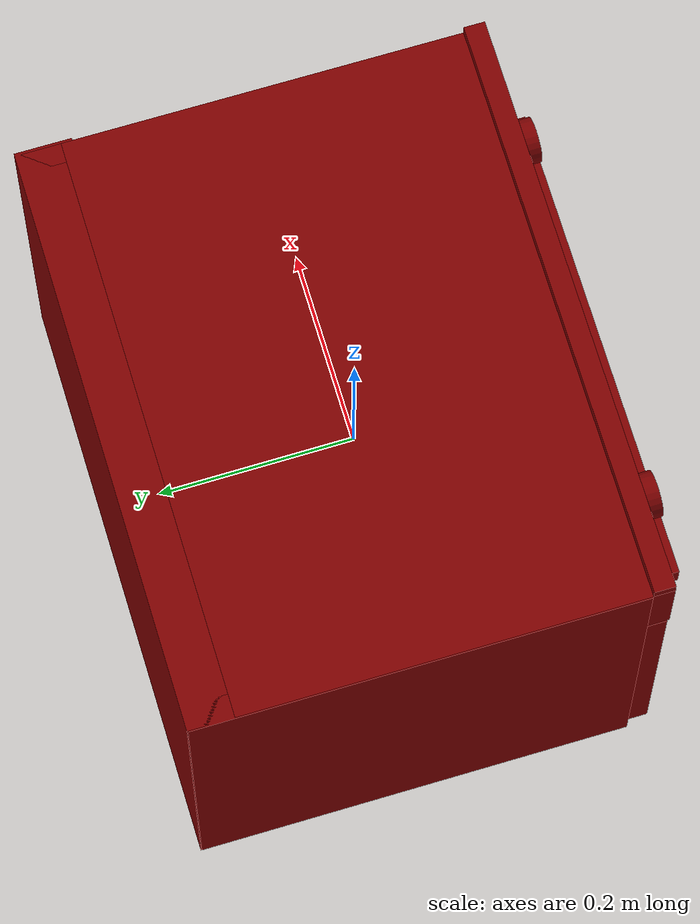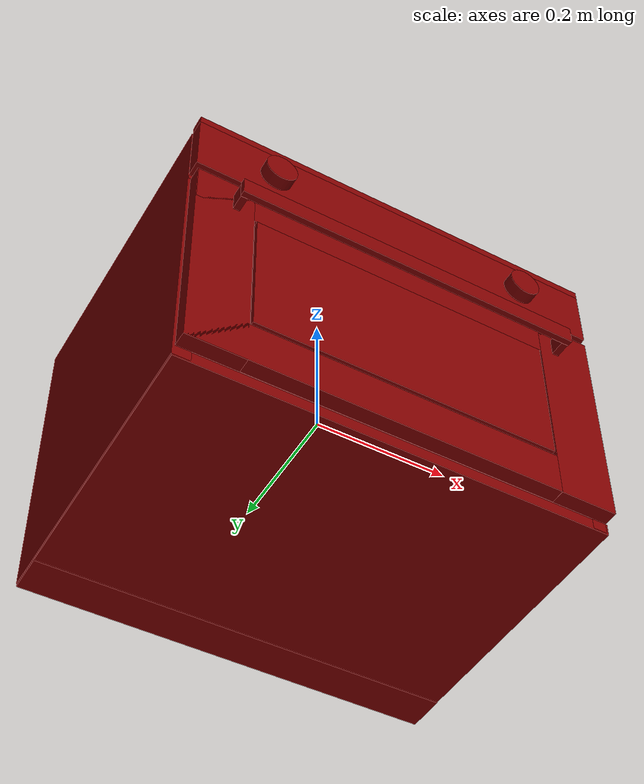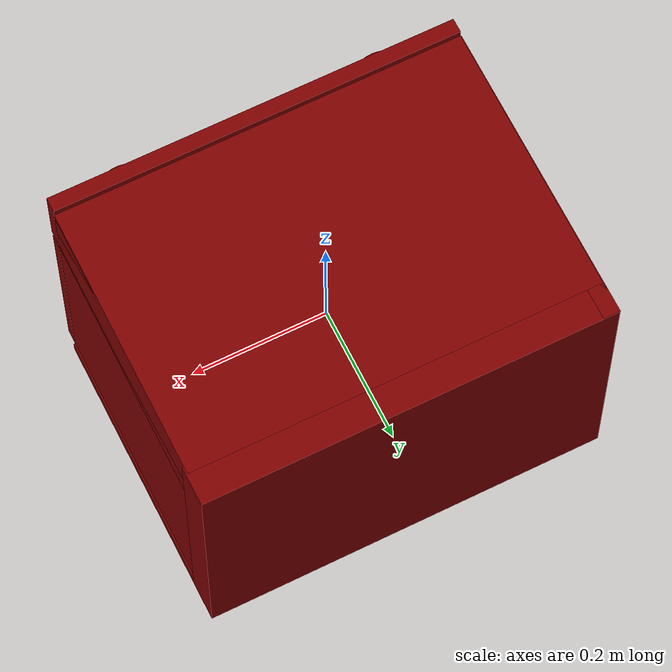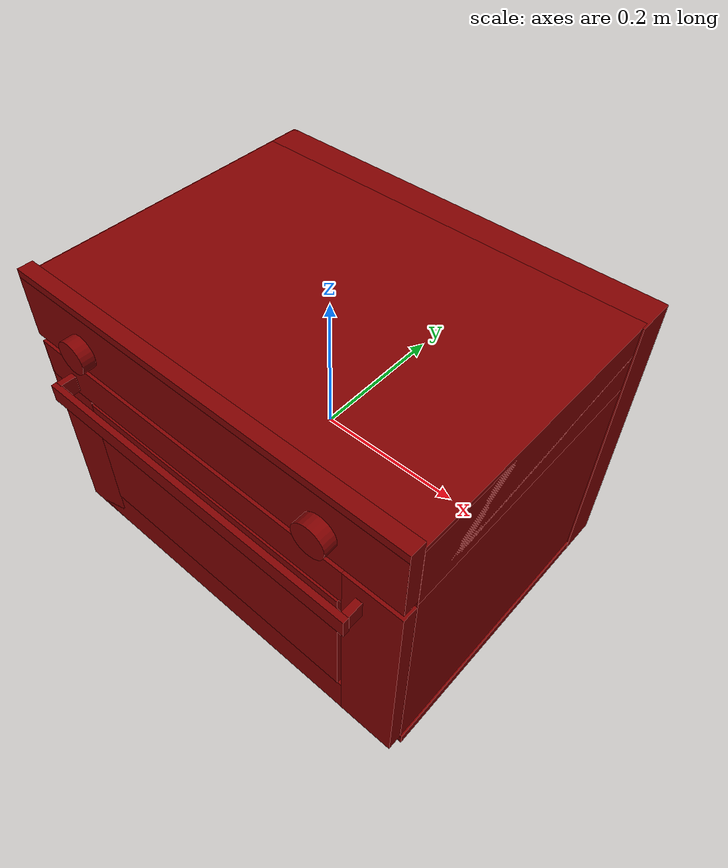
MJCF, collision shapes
<mujoco model="model">
  <compiler angle="radian"/>
  <asset>
    <mesh file="visuals/Body001.obj" name="Body001_vis"/>
    <mesh file="visuals/Container001.obj" name="Container001_vis"/>
    <mesh file="visuals/Door001.obj" name="Door001_vis"/>
    <mesh file="visuals/Door001_Clear.obj" name="Door001_Clear_vis"/>
    <mesh file="visuals/Konb001.obj" name="Konb001_vis"/>
    <mesh file="visuals/Konb002.obj" name="Konb002_vis"/>
    <texture file="visuals/T_BC001.png" name="Body001_material" type="2d"/>
    <material name="Body001_material" rgba="1 1 1 1.0" texture="Body001_material" shininess="0.4472135901451111" specular="1"/>
    <texture file="visuals/T_BC001.png" name="Container001_material" type="2d"/>
    <material name="Container001_material" rgba="1 1 1 1.0" texture="Container001_material" shininess="0.4472135901451111" specular="5"/>
    <texture file="visuals/T_BC001.png" name="Door001_material" type="2d"/>
    <material name="Door001_material" rgba="1 1 1 1.0" texture="Door001_material" shininess="0.4472135901451111" specular="1"/>
    <texture file="visuals/T_BC001.png" name="Door001_Clear_material" type="2d"/>
    <material name="Door001_Clear_material" rgba="1 1 1 0.7405593395233154" texture="Door001_Clear_material" shininess="0.4472135901451111" specular="0.3103448502657381"/>
    <texture file="visuals/T_BC001.png" name="Konb001_material" type="2d"/>
    <material name="Konb001_material" rgba="1 1 1 1.0" texture="Konb001_material" shininess="0.4472135901451111" specular="0.3103448502657381"/>
    <texture file="visuals/T_BC001.png" name="Konb002_material" type="2d"/>
    <material name="Konb002_material" rgba="1 1 1 1.0" texture="Konb002_material" shininess="0.4472135901451111" specular="0.3103448502657381"/>
  </asset>
  <default>
    <default class="visual">
      <geom conaffinity="0" contype="0" group="1" type="mesh"/>
    </default>
    <default class="collision">
      <geom group="0" rgba="0.5 0 0 0.5"/>
    </default>
    <default class="spawn">
      <geom group="0" rgba="1 1 1 0.5" contype="0" conaffinity="0"/>
      <site group="0" rgba="1 1 1 0.5"/>
    </default>
    <default class="region">
      <geom group="1" conaffinity="0" contype="0" rgba="0 1 0 0"/>
    </default>
  </default>
  <worldbody>
    <body>
      <body name="object">
        <geom mesh="Body001_vis" type="mesh" solimp="0.998 0.998 0.001" solref="0.001 1" density="100" friction="0.95 0.3 0.1" class="visual" material="Body001_material"/>
        <geom class="collision" type="box" pos="-0.288589 0.025504 -0.005253" size="0.012301268987357616 0.22443567216396332 0.21716304123401642" quat="1.0 0.0 0.0 0.0"/>
        <geom class="collision" type="box" pos="0.287287 0.025504 -0.005253" size="0.01007136981934309 0.22443567216396332 0.21716304123401642" quat="1.0 0.0 0.0 0.0"/>
        <geom class="collision" type="box" pos="0.000008 0.221960 -0.006882" size="0.29982373118400574 0.028858307749032974 0.218792125582695" quat="1.0 0.0 0.0 0.0"/>
        <geom class="collision" type="box" pos="-0.001163 -0.008207 0.166489" size="0.29865479469299316 0.2129410356283188 0.045421745628118515" quat="1.0 0.0 0.0 0.0"/>
        <geom class="collision" type="box" pos="0.000008 -0.002999 -0.216227" size="0.29982486367225647 0.1959325671195984 0.008477035909891129" quat="1.0 0.0 0.0 0.0"/>
        <geom class="collision" type="box" pos="-0.000955 -0.210335 0.172772" size="0.29865479469299316 0.010733655653893948 0.05090698227286339" quat="1.0 0.0 0.0 0.0"/>
        <geom class="collision" type="box" pos="-0.001163 0.002901 0.158916" size="0.29865479469299316 0.2018328309059143 0.045421745628118515" quat="1.0 0.0 0.0 0.0"/>
        <geom class="collision" type="box" pos="0.267063 0.000910 -0.002714" size="0.01082796510308981 0.171627014875412 0.002921855775639415" quat="1.0 0.0 0.0 0.0"/>
        <geom class="collision" type="box" pos="0.267063 0.000910 -0.021304" size="0.01082796510308981 0.171627014875412 0.002921855775639415" quat="1.0 0.0 0.0 0.0"/>
        <geom class="collision" type="box" pos="0.267063 0.000910 0.067570" size="0.01082796510308981 0.171627014875412 0.002921855775639415" quat="1.0 0.0 0.0 0.0"/>
        <geom class="collision" type="box" pos="0.267063 0.000910 0.048980" size="0.01082796510308981 0.171627014875412 0.002921855775639415" quat="1.0 0.0 0.0 0.0"/>
        <geom class="collision" type="box" pos="0.267063 0.000910 -0.072808" size="0.01082796510308981 0.171627014875412 0.002921855775639415" quat="1.0 0.0 0.0 0.0"/>
        <geom class="collision" type="box" pos="0.267063 0.000910 -0.091974" size="0.01082796510308981 0.171627014875412 0.002921855775639415" quat="1.0 0.0 0.0 0.0"/>
        <geom class="collision" type="box" pos="0.267063 0.000910 -0.143260" size="0.01082796510308981 0.171627014875412 0.002921855775639415" quat="1.0 0.0 0.0 0.0"/>
        <geom class="collision" type="box" pos="0.267063 0.000910 -0.162427" size="0.01082796510308981 0.171627014875412 0.002921855775639415" quat="1.0 0.0 0.0 0.0"/>
        <geom class="collision" type="box" pos="-0.267527 0.000910 -0.002714" size="0.01082796510308981 0.171627014875412 0.002921855775639415" quat="1.0 0.0 0.0 0.0"/>
        <geom class="collision" type="box" pos="-0.267527 0.000910 -0.021304" size="0.01082796510308981 0.171627014875412 0.002921855775639415" quat="1.0 0.0 0.0 0.0"/>
        <geom class="collision" type="box" pos="-0.267527 0.000910 0.067570" size="0.01082796510308981 0.171627014875412 0.002921855775639415" quat="1.0 0.0 0.0 0.0"/>
        <geom class="collision" type="box" pos="-0.267527 0.000910 0.048980" size="0.01082796510308981 0.171627014875412 0.002921855775639415" quat="1.0 0.0 0.0 0.0"/>
        <geom class="collision" type="box" pos="-0.267527 0.000910 -0.072808" size="0.01082796510308981 0.171627014875412 0.002921855775639415" quat="1.0 0.0 0.0 0.0"/>
        <geom class="collision" type="box" pos="-0.267527 0.000910 -0.091974" size="0.01082796510308981 0.171627014875412 0.002921855775639415" quat="1.0 0.0 0.0 0.0"/>
        <geom class="collision" type="box" pos="-0.267527 0.000910 -0.143260" size="0.01082796510308981 0.171627014875412 0.002921855775639415" quat="1.0 0.0 0.0 0.0"/>
        <geom class="collision" type="box" pos="-0.267527 0.000910 -0.162427" size="0.01082796510308981 0.171627014875412 0.002921855775639415" quat="1.0 0.0 0.0 0.0"/>
        <body name="Container001">
          <joint axis="0.0 -1.0 0.0" pos="0.000234 0.003716 -0.100328" limited="true" name="Container001_joint" range="0.0 0.25" type="slide" damping="1" frictionloss="1" armature=".01" stiffness="0.05"/>
          <geom mesh="Container001_vis" type="mesh" solimp="0.998 0.998 0.001" solref="0.001 1" density="100" friction="0.95 0.3 0.1" class="visual" material="Container001_material"/>
          <geom class="collision" type="box" pos="0.000234 0.003716 -0.100327" size="0.24693214893341064 0.17276442050933838 0.01748277060687542" quat="1.0 0.0 0.0 0.0"/>
        </body>
        <body name="Door001">
          <joint axis="1.0 0.0 0.0" pos="0.000008 -0.210710 -0.212575" limited="true" name="Door001_joint" range="0.0 1.15" type="hinge" damping="5" frictionloss="1" armature=".01" stiffness="0.05" springref="-0.1"/>
          <geom mesh="Door001_vis" type="mesh" solimp="0.998 0.998 0.001" solref="0.001 1" density="100" friction="0.95 0.3 0.1" class="visual" material="Door001_material"/>
          <geom class="collision" type="box" pos="0.257300 -0.210096 -0.048884" size="0.040192071348428726 0.01049470528960228 0.158974289894104" quat="1.0 0.0 0.0 0.0"/>
          <geom class="collision" type="box" pos="-0.241345 -0.231717 0.072615" size="0.004729939624667168 0.011752120219171047 0.013017678633332253" quat="1.0 0.0 0.0 0.0"/>
          <geom class="collision" type="box" pos="0.241227 -0.233502 0.072010" size="0.004729939624667168 0.014959098771214485 0.0130176842212677" quat="1.0 0.0 0.0 0.0"/>
          <geom class="collision" type="box" pos="-0.000008 -0.246619 0.072009" size="0.24692656099796295 0.004276346415281296 0.013223215006291866" quat="1.0 0.0 0.0 0.0"/>
          <geom class="collision" type="box" pos="-0.256776 -0.210096 -0.048884" size="0.04073211923241615 0.01049470528960228 0.158974289894104" quat="1.0 0.0 0.0 0.0"/>
          <geom class="collision" type="box" pos="-0.037397 -0.210096 0.081898" size="0.2590307593345642 0.01049470528960228 0.028191905468702316" quat="1.0 0.0 0.0 0.0"/>
          <geom class="collision" type="box" pos="-0.037397 -0.210096 -0.176379" size="0.2590307593345642 0.01049470528960228 0.030920369550585747" quat="1.0 0.0 0.0 0.0"/>
          <body name="Door001_Clear">
            <geom mesh="Door001_Clear_vis" type="mesh" solimp="0.998 0.998 0.001" solref="0.001 1" density="100" friction="0.95 0.3 0.1" class="visual" material="Door001_Clear_material"/>
            <geom class="collision" type="box" pos="-0.000008 -0.219320 -0.045010" size="0.2128640115261078 0.003356435801833868 0.0963795930147171" quat="1.0 0.0 0.0 0.0"/>
          </body>
        </body>
        <body name="Konb001">
          <joint axis="0.0 1.0 0.0" pos="-0.188525 -0.230486 0.162010" limited="true" name="Konb001_joint" range="0.0 3.961897402027128" type="hinge" damping="1" frictionloss="1" armature=".01" stiffness="0.05"/>
          <geom mesh="Konb001_vis" type="mesh" solimp="0.998 0.998 0.001" solref="0.001 1" density="100" friction="0.95 0.3 0.1" class="visual" material="Konb001_material"/>
          <geom class="collision" type="cylinder" pos="-0.188671 -0.232009 0.162008" size="0.02280486561357975 0.009144816547632217" quat="0.7071068286895752 0.7071067690849304 -1.5700924318127872e-16 -5.9269340452702814e-24"/>
        </body>
        <body name="Konb002">
          <joint axis="0.0 1.0 0.0" pos="0.190813 -0.230486 0.161844" limited="true" name="Konb002_joint" range="0.0 3.2288591161895095" type="hinge" damping="1" frictionloss="1" armature=".01" stiffness="0.05"/>
          <geom mesh="Konb002_vis" type="mesh" solimp="0.998 0.998 0.001" solref="0.001 1" density="100" friction="0.95 0.3 0.1" class="visual" material="Konb002_material"/>
          <geom class="collision" type="cylinder" pos="0.190490 -0.231651 0.161847" size="0.02280486561357975 0.009190382435917854" quat="0.7071068286895752 0.7071067690849304 -1.5700924318127872e-16 -5.9269340452702814e-24"/>
        </body>
        <geom class="region" name="reg_main" type="box" pos="-8.000000000008e-06 0.014360499999999998 0.0" size="0.2975 0.2361435 0.223679"/>
        <geom class="region" name="reg_int" type="box" pos="0.001381000000000021 -0.003651500000000002 -0.04650699999999999" size="0.275258 0.1948455 0.158548"/>
      </body>
    </body>
  </worldbody>
  <actuator>
    <motor name="Container001_joint_actuator" joint="Container001_joint" gear="10"/>
    <motor name="Door001_joint_actuator" joint="Door001_joint" gear="50"/>
    <motor name="Konb001_joint_actuator" joint="Konb001_joint" gear="50"/>
    <motor name="Konb002_joint_actuator" joint="Konb002_joint" gear="50"/>
  </actuator>
</mujoco>
